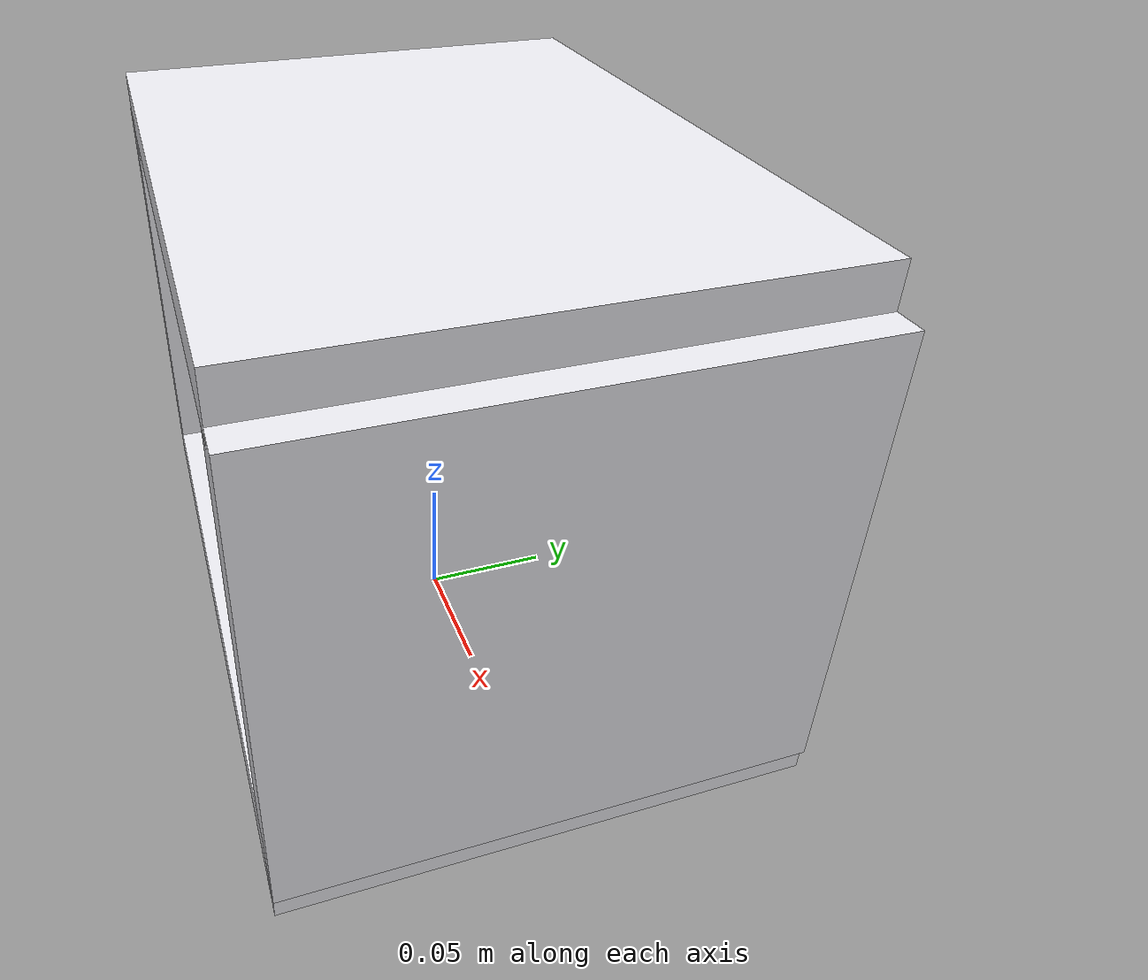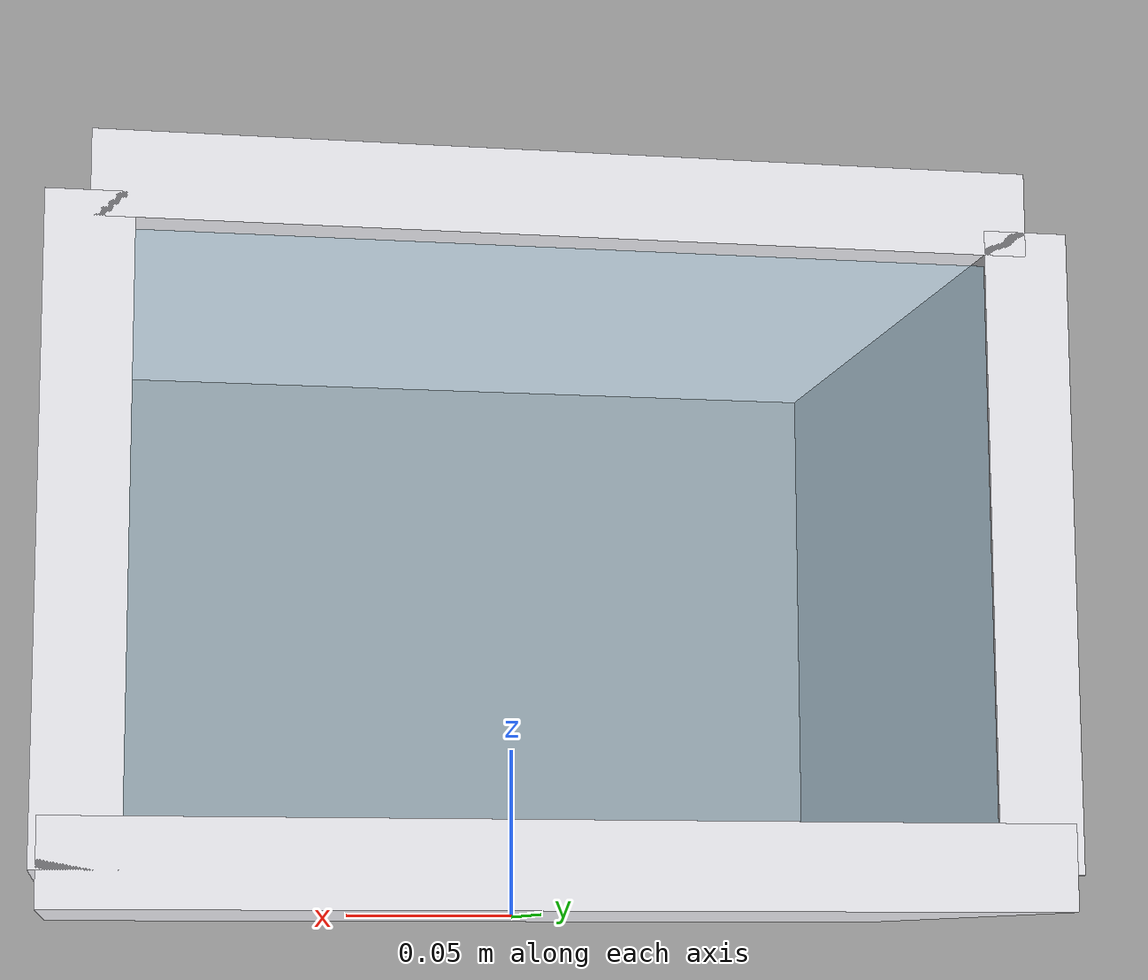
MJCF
<?xml version="1.0" encoding="utf-8"?>
<mujoco model="real_lab_western_university_biosafety">
  <compiler angle="radian" autolimits="true"/>
  <default>
    <default class="body"><geom contype="1" conaffinity="1"/></default>
  </default>
  <worldbody>
    <body name="base">
      <geom type="box" size="0.14 0.1 0.012" pos="0 0 0.012" rgba="0.92 0.92 0.94 1" class="body"/>
      <geom type="box" size="0.012 0.1 0.09" pos="-0.13 0 0.1" rgba="0.92 0.92 0.94 1" class="body"/>
      <geom type="box" size="0.012 0.1 0.09" pos="0.13 0 0.1" rgba="0.92 0.92 0.94 1" class="body"/>
      <geom type="box" size="0.13 0.1 0.012" pos="0 0 0.195" rgba="0.92 0.92 0.94 1" class="body"/>
      <body name="sash" pos="0 0.095 0.1">
        <joint name="sash_joint" type="slide" axis="0 0 1" range="0 0.08" damping="1.0" frictionloss="0.4"/>
  <geom type="box" size="0.12 0.004 0.08" pos="0 0 0" rgba="0.6 0.8 0.9 0.35" class="body"/>
      </body>
    </body>
  </worldbody>
</mujoco>
